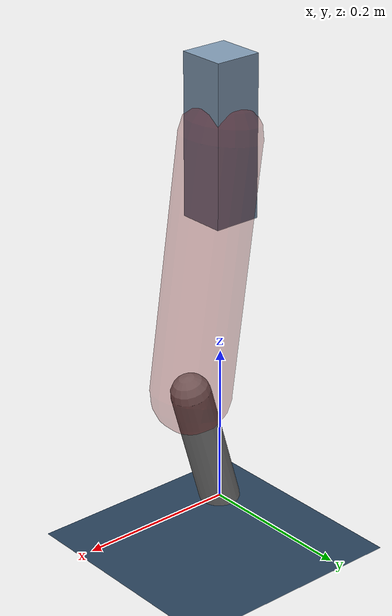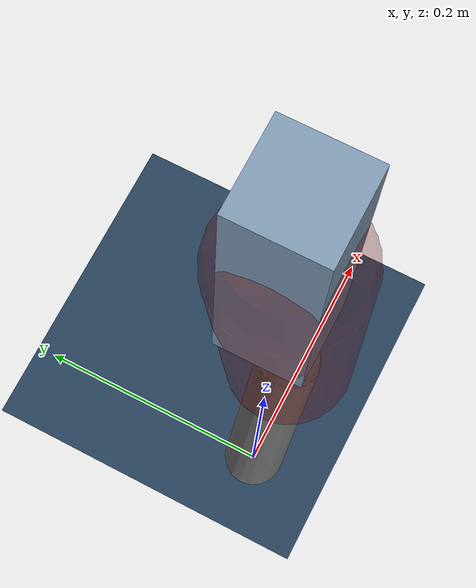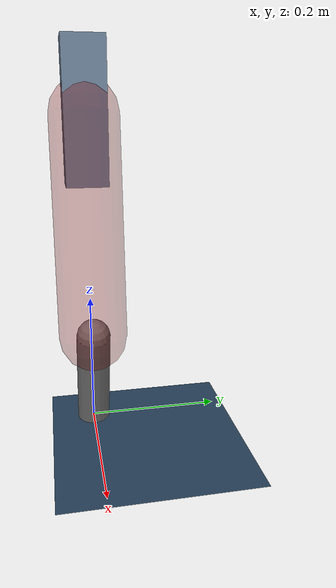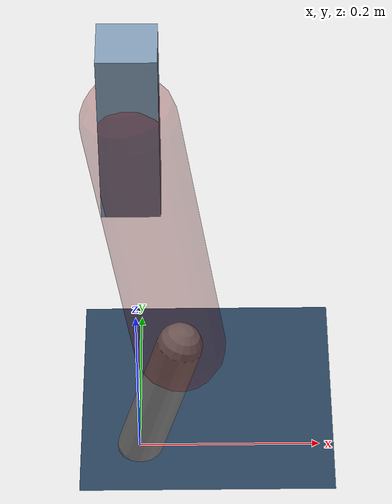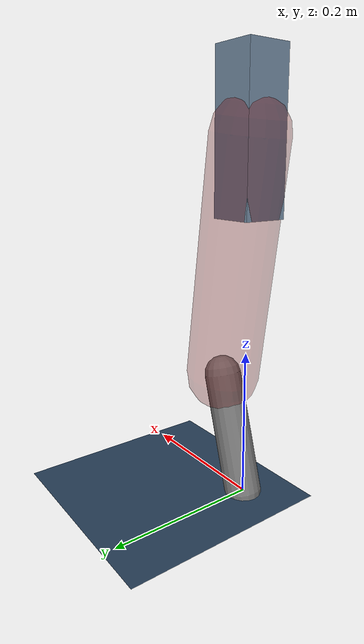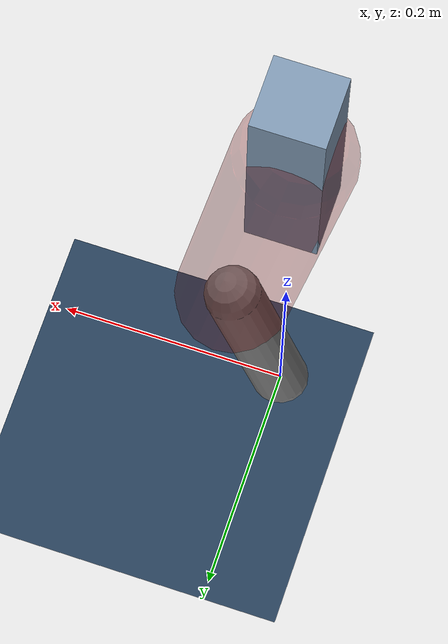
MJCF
<mujoco model="Hopper2D">
	<compiler inertiafromgeom="true" angle="radian" />
	<option timestep="0.001" integrator="implicit" cone="elliptic" solver="Newton" tolerance="1e-10" />

	<default>
		<geom contype="1" conaffinity="1" condim="3" friction="2 0.005 0.0001" solref="0.005 1" />
		<joint limited="true" damping="0.1" />
	</default>

	<asset>
		<texture name="skybox" type="skybox" builtin="gradient" rgb1=".4 .6 .8" rgb2="0 0 0" width="800" height="800" />
		<texture name="grid" type="2d" builtin="checker" rgb1=".1 .2 .3" rgb2=".2 .3 .4" width="300" height="300" mark="edge" markrgb=".2 .3 .4" />
		<material name="ground" texture="grid" texrepeat="1 1" texuniform="true" reflectance="0.1" />
		<material name="leg" rgba="0.5 0.6 0.7 1" />
	</asset>

	<worldbody>

		<geom name="floor" type="plane" size="5 5 0.25" material="ground" />

		<light directional="false" diffuse="0.8 0.8 0.8" specular="0.3 0.3 0.3" pos="0 0 2" dir="0 0 -1" />
		<light mode="targetbodycom" target="base" directional="false" diffuse="0.8 0.8 0.8" specular="0.3 0.3 0.3" pos="0 0 2" dir="0 0 -1" />

		<camera name="fixed" pos="0 -2 1" xyaxes="1 0 0 0 0 1" />
		<camera name="tracking" mode="trackcom" pos="0 -3 1" />

		<body name="root" pos="0 0 0.47489400602894777">
			<joint name="slide_x" type="slide" axis="1 0 0" range="-100 100" />
			<joint name="slide_z" type="slide" axis="0 0 1" range="0 10" />

			<body name="base" pos="0 0 0">
				<geom name="torso" type="box" size="0.03 0.03 0.1" mass="4.306" material="leg" />

				<body name="link1" pos="0 0 0" euler="0 1.4253387231535655 0">
					<joint type="hinge" axis="0 -1 0" pos="0 0 0" name="hinge1" limited="true" range="-3.14 3.14" stiffness="0" damping="0.1" />
					<geom name="thigh" type="capsule" fromto="0 0 0 0.3196090525447833 0 0" size="0.05" rgba="0.5 0 0 0.3" mass="1.0421444418709147" />

					<body name="link2" pos="0.3196090525447833 0 0" euler="0 0.4295417306218842 0">
						<joint type="hinge" axis="0 -1 0" pos="0 0 0" name="hinge2" limited="true" range="-3.14 3.14" stiffness="0" damping="0.1" />
						<geom name="shank" type="capsule" fromto="0 0 0 0.1652849534841645 0 0" size="0.025" mass="0.37115645813574805" />

					</body>
				</body>
			</body>
		</body>
	</worldbody>

	<actuator>
		<motor name="torque1" joint="hinge1" ctrlrange="-259.6841162575324 259.6841162575324" ctrllimited="true" gear="1" />
		<motor name="torque2" joint="hinge2" ctrlrange="-87.50039087055781 87.50039087055781" ctrllimited="true" gear="1" />
	</actuator>
</mujoco>
